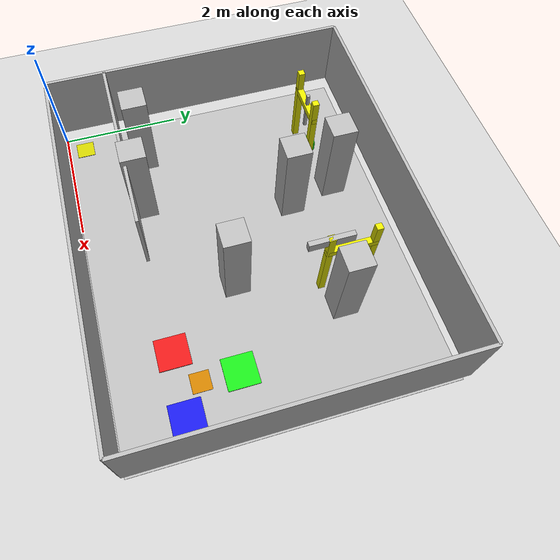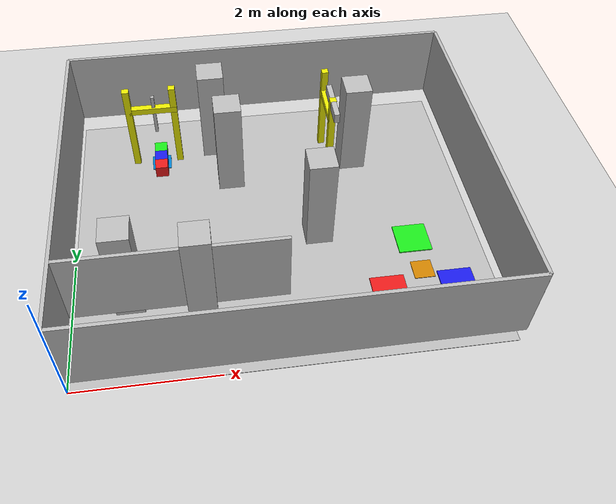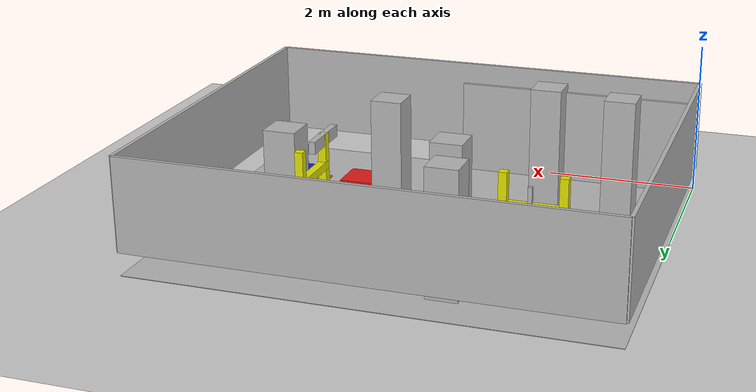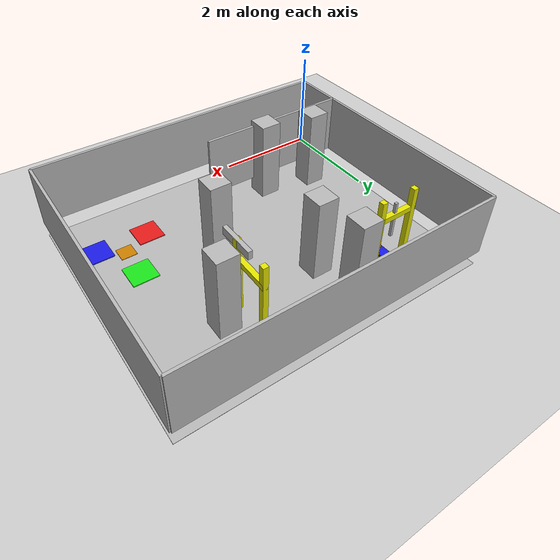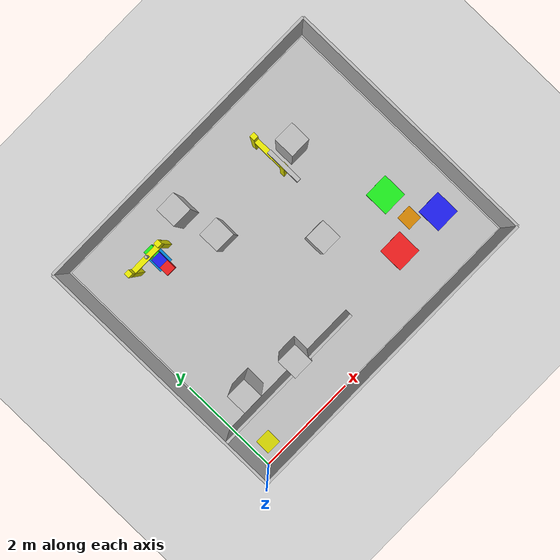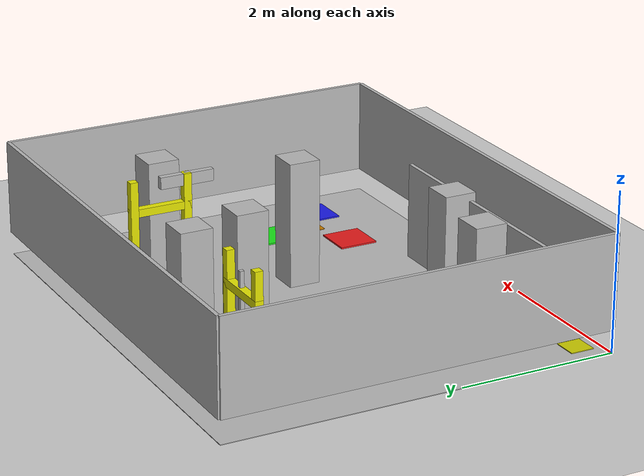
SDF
<?xml version="1.0"?>
<sdf version="1.6">
  <world name="competition">
    <include>
      <uri>model://sun</uri>
    </include>

    <include>
      <uri>model://ground_plane</uri>
    </include>

    <physics name="default_physics" default="true" type="ode">
      <gravity>0 0 -9.81</gravity>
      <max_step_size>0.004</max_step_size>
      <real_time_factor>1</real_time_factor>
      <real_time_update_rate>250</real_time_update_rate>
    </physics>

    <scene>
      <ambient>0.4 0.4 0.4 1</ambient>
      <background>0.7 0.7 0.8 1</background>
      <shadows>true</shadows>
    </scene>

    <!-- Competition arena (perimeter walls + floor + zone labels) -->
    <include>
      <uri>model://competition_arena</uri>
      <pose>0 0 0 0 0 0</pose>
    </include>

    <!-- ======== Internal walls (from map.yaml) ======== -->
    <!-- Wall 2: gate 2 side wall, at x=396~404cm, y=315~385cm, z=135~150cm -->
    <model name="wall_segment_2">
      <static>true</static>
      <link name="body">
        <collision name="collision">
          <geometry><box><size>0.08 0.70 0.15</size></box></geometry>
        </collision>
        <visual name="visual">
          <geometry><box><size>0.08 0.70 0.15</size></box></geometry>
          <material><script>Gazebo/White</script></material>
        </visual>
      </link>
      <pose>4.00 3.50 1.425 0 0 0</pose>
    </model>

    <!-- Wall 3: gate 1 door frame, at x=129cm, y=410cm, z=65~135cm -->
    <model name="wall_segment_3">
      <static>true</static>
      <link name="body">
        <collision name="collision">
          <geometry><box><size>0.05 0.05 0.70</size></box></geometry>
        </collision>
        <visual name="visual">
          <geometry><box><size>0.05 0.05 0.70</size></box></geometry>
          <material><script>Gazebo/White</script></material>
        </visual>
      </link>
      <pose>1.29 4.10 1.00 0 0 0</pose>
    </model>

    <!-- ======== Obstacles (centers of YAML ranges) ======== -->
    <!-- O1: x[60,100], y[110,150] → center (80, 130) cm -->
    <include>
      <uri>model://obstacle_box</uri>
      <name>obstacle_1</name>
      <pose>0.80 1.30 0 0 0 0</pose>
    </include>

    <!-- O2: x[160,200], y[90,130] → center (180, 110) cm (dynamic) -->
    <include>
      <uri>model://obstacle_box</uri>
      <name>obstacle_2</name>
      <pose>1.80 1.10 0 0 0 0</pose>
    </include>

    <!-- O3: x[220,260], y[330,370] → center (240, 350) cm -->
    <include>
      <uri>model://obstacle_box</uri>
      <name>obstacle_3</name>
      <pose>2.40 3.50 0 0 0 0</pose>
    </include>

    <!-- O4: x[340,380], y[200,240] → center (360, 220) cm -->
    <include>
      <uri>model://obstacle_box</uri>
      <name>obstacle_4</name>
      <pose>3.60 2.20 0 0 0 0</pose>
    </include>

    <!-- O5: x[420,460], y[350,390] → center (440, 370) cm -->
    <include>
      <uri>model://obstacle_box</uri>
      <name>obstacle_5</name>
      <pose>4.40 3.70 0 0 0 0</pose>
    </include>

    <!-- O6: x[200,240], y[410,450] → center (220, 430) cm (dynamic) -->
    <include>
      <uri>model://obstacle_box</uri>
      <name>obstacle_6</name>
      <pose>2.20 4.30 0 0 0 0</pose>
    </include>

    <!-- ======== Gates ======== -->
    <!-- Gate 1: near A zone, opens toward +Y (no rotation) -->
    <include>
      <uri>model://gate</uri>
      <name>gate_1</name>
      <pose>1.25 4.10 0 0 0 0</pose>
    </include>

    <!-- Gate 2: opens toward +X (rotate 90° around Z) -->
    <include>
      <uri>model://gate</uri>
      <name>gate_2</name>
      <pose>4.00 3.85 0 0 0 1.5708</pose>
    </include>

    <!-- ======== Landing pads (inline for proper colors) ======== -->
    <model name="pad_red">
      <static>true</static>
      <link name="pad">
        <visual name="visual">
          <geometry><box><size>0.5 0.5 0.02</size></box></geometry>
          <material><ambient>0.9 0.1 0.1 1</ambient><diffuse>0.9 0.1 0.1 1</diffuse></material>
        </visual>
        <collision name="collision">
          <geometry><box><size>0.5 0.5 0.02</size></box></geometry>
        </collision>
      </link>
      <pose>4.45 1.00 0.01 0 0 0</pose>
    </model>

    <model name="pad_green">
      <static>true</static>
      <link name="pad">
        <visual name="visual">
          <geometry><box><size>0.5 0.5 0.02</size></box></geometry>
          <material><ambient>0.1 0.9 0.1 1</ambient><diffuse>0.1 0.9 0.1 1</diffuse></material>
        </visual>
        <collision name="collision">
          <geometry><box><size>0.5 0.5 0.02</size></box></geometry>
        </collision>
      </link>
      <pose>5.00 1.90 0.01 0 0 0</pose>
    </model>

    <model name="pad_blue">
      <static>true</static>
      <link name="pad">
        <visual name="visual">
          <geometry><box><size>0.5 0.5 0.02</size></box></geometry>
          <material><ambient>0.1 0.1 0.9 1</ambient><diffuse>0.1 0.1 0.9 1</diffuse></material>
        </visual>
        <collision name="collision">
          <geometry><box><size>0.5 0.5 0.02</size></box></geometry>
        </collision>
      </link>
      <pose>5.45 1.00 0.01 0 0 0</pose>
    </model>

    <!-- ======== Color detection test markers (A zone) ======== -->
    <model name="target_red">
      <static>true</static>
      <link name="body">
        <visual name="visual">
          <geometry><box><size>0.20 0.20 0.20</size></box></geometry>
          <material><ambient>0.9 0.1 0.1 1</ambient><diffuse>0.9 0.1 0.1 1</diffuse></material>
        </visual>
        <collision name="collision">
          <geometry><box><size>0.20 0.20 0.20</size></box></geometry>
        </collision>
      </link>
      <pose>1.30 3.80 0.10 0 0 0</pose>
    </model>

    <model name="target_green">
      <static>true</static>
      <link name="body">
        <visual name="visual">
          <geometry><box><size>0.20 0.20 0.20</size></box></geometry>
          <material><ambient>0.1 0.9 0.1 1</ambient><diffuse>0.1 0.9 0.1 1</diffuse></material>
        </visual>
        <collision name="collision">
          <geometry><box><size>0.20 0.20 0.20</size></box></geometry>
        </collision>
      </link>
      <pose>1.30 4.20 0.10 0 0 0</pose>
    </model>

    <model name="target_blue">
      <static>true</static>
      <link name="body">
        <visual name="visual">
          <geometry><box><size>0.20 0.20 0.20</size></box></geometry>
          <material><ambient>0.1 0.1 0.9 1</ambient><diffuse>0.1 0.1 0.9 1</diffuse></material>
        </visual>
        <collision name="collision">
          <geometry><box><size>0.20 0.20 0.20</size></box></geometry>
        </collision>
      </link>
      <pose>1.30 4.00 0.10 0 0 0</pose>
    </model>
  </world>
</sdf>

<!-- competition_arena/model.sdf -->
<sdf version="1.6">
  <model name="competition_arena">
    <static>true</static>
    <link name="floor">
      <collision name="floor_collision">
        <geometry><box><size>6.0 5.0 0.05</size></box></geometry>
      </collision>
      <visual name="floor_visual">
        <geometry><box><size>6.0 5.0 0.05</size></box></geometry>
        <material><script>Gazebo/Grey</script></material>
      </visual>
      <pose>3.0 2.5 -0.025 0 0 0</pose>
    </link>

    <!-- North wall: y=5.0, x=0~6, 0.3m~1.5m -->
    <link name="wall_north">
      <collision name="wall_north_collision">
        <geometry><box><size>6.0 0.05 1.2</size></box></geometry>
      </collision>
      <visual name="wall_north_visual">
        <geometry><box><size>6.0 0.05 1.2</size></box></geometry>
        <material><script>Gazebo/White</script></material>
      </visual>
      <pose>3.0 5.0 0.9 0 0 0</pose>
    </link>

    <!-- South wall: y=0, x=0~6 -->
    <link name="wall_south">
      <collision name="wall_south_collision">
        <geometry><box><size>6.0 0.05 1.2</size></box></geometry>
      </collision>
      <visual name="wall_south_visual">
        <geometry><box><size>6.0 0.05 1.2</size></box></geometry>
        <material><script>Gazebo/White</script></material>
      </visual>
      <pose>3.0 0.0 0.9 0 0 0</pose>
    </link>

    <!-- East wall: x=6.0, y=0~5 -->
    <link name="wall_east">
      <collision name="wall_east_collision">
        <geometry><box><size>0.05 5.0 1.2</size></box></geometry>
      </collision>
      <visual name="wall_east_visual">
        <geometry><box><size>0.05 5.0 1.2</size></box></geometry>
        <material><script>Gazebo/White</script></material>
      </visual>
      <pose>6.0 2.5 0.9 0 0 0</pose>
    </link>

    <!-- West wall: x=0, y=0~5 -->
    <link name="wall_west">
      <collision name="wall_west_collision">
        <geometry><box><size>0.05 5.0 1.2</size></box></geometry>
      </collision>
      <visual name="wall_west_visual">
        <geometry><box><size>0.05 5.0 1.2</size></box></geometry>
        <material><script>Gazebo/White</script></material>
      </visual>
      <pose>0.0 2.5 0.9 0 0 0</pose>
    </link>

    <!-- Wall segment 1: y=96cm (0.96m), x=0~3m, internal -->
    <link name="wall_internal_1">
      <collision name="wall_internal_1_collision">
        <geometry><box><size>3.0 0.05 1.2</size></box></geometry>
      </collision>
      <visual name="wall_internal_1_visual">
        <geometry><box><size>3.0 0.05 1.2</size></box></geometry>
        <material><script>Gazebo/White</script></material>
      </visual>
      <pose>1.5 0.96 0.9 0 0 0</pose>
    </link>

    <!-- Ground plane labels -->
    <link name="label_h">
      <visual name="label_h_visual">
        <geometry><box><size>0.3 0.3 0.01</size></box></geometry>
        <material><ambient>0.8 0.8 0 1</ambient><diffuse>0.8 0.8 0 1</diffuse></material>
      </visual>
      <pose>0.3 0.3 0.03 0 0 0</pose>
    </link>

    <link name="label_a">
      <visual name="label_a_visual">
        <geometry><box><size>0.3 0.3 0.01</size></box></geometry>
        <material><ambient>0 0.5 0.8 1</ambient><diffuse>0 0.5 0.8 1</diffuse></material>
      </visual>
      <pose>1.3 4.0 0.03 0 0 0</pose>
    </link>

    <link name="label_b">
      <visual name="label_b_visual">
        <geometry><box><size>0.3 0.3 0.01</size></box></geometry>
        <material><ambient>0.8 0.5 0 1</ambient><diffuse>0.8 0.5 0 1</diffuse></material>
      </visual>
      <pose>5.0 1.3 0.03 0 0 0</pose>
    </link>
  </model>
</sdf>

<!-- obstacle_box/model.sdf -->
<sdf version="1.6">
  <model name="obstacle_box">
    <static>true</static>
    <link name="body">
      <collision name="body_collision">
        <geometry><box><size>0.4 0.4 1.6</size></box></geometry>
      </collision>
      <visual name="body_visual">
        <geometry><box><size>0.4 0.4 1.6</size></box></geometry>
        <material><script>Gazebo/Red</script></material>
      </visual>
      <pose>0 0 0.8 0 0 0</pose>
    </link>
  </model>
</sdf>

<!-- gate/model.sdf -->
<sdf version="1.6">
  <model name="gate">
    <static>true</static>
    <!-- Left pillar -->
    <link name="left_pillar">
      <collision name="left_pillar_collision">
        <geometry><box><size>0.1 0.1 1.5</size></box></geometry>
      </collision>
      <visual name="left_pillar_visual">
        <geometry><box><size>0.1 0.1 1.5</size></box></geometry>
        <material><ambient>0.9 0.9 0 1</ambient><diffuse>0.9 0.9 0 1</diffuse></material>
      </visual>
      <pose>-0.35 0 0.75 0 0 0</pose>
    </link>
    <!-- Right pillar -->
    <link name="right_pillar">
      <collision name="right_pillar_collision">
        <geometry><box><size>0.1 0.1 1.5</size></box></geometry>
      </collision>
      <visual name="right_pillar_visual">
        <geometry><box><size>0.1 0.1 1.5</size></box></geometry>
        <material><ambient>0.9 0.9 0 1</ambient><diffuse>0.9 0.9 0 1</diffuse></material>
      </visual>
      <pose>0.35 0 0.75 0 0 0</pose>
    </link>
    <!-- Top crossbar -->
    <link name="crossbar">
      <collision name="crossbar_collision">
        <geometry><box><size>0.8 0.1 0.1</size></box></geometry>
      </collision>
      <visual name="crossbar_visual">
        <geometry><box><size>0.8 0.1 0.1</size></box></geometry>
        <material><ambient>0.9 0.9 0 1</ambient><diffuse>0.9 0.9 0 1</diffuse></material>
      </visual>
      <pose>0 0 1.1 0 0 0</pose>
    </link>
  </model>
</sdf>
